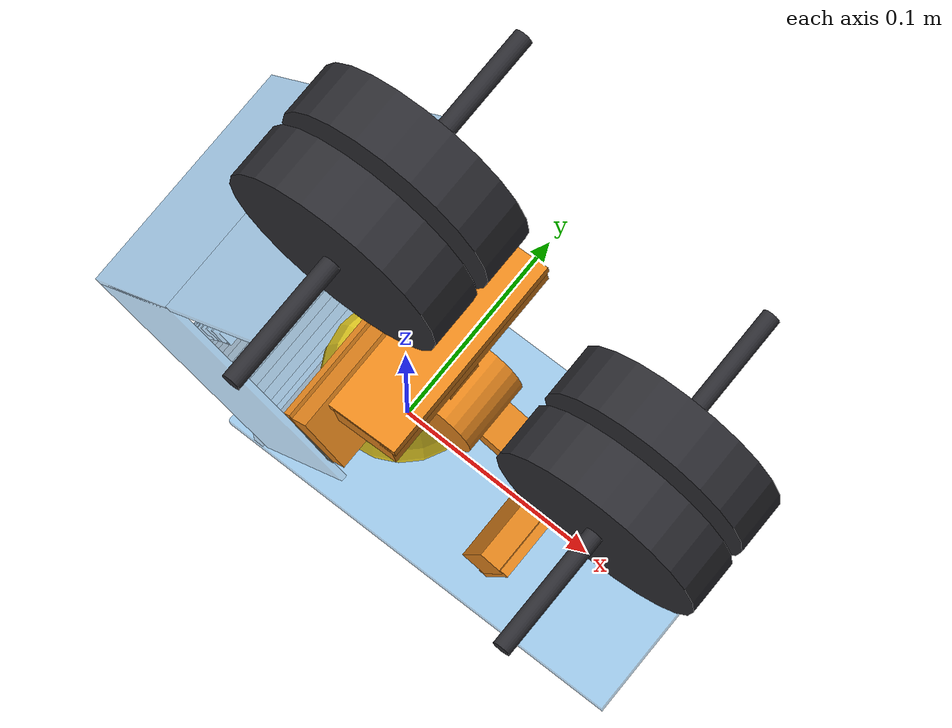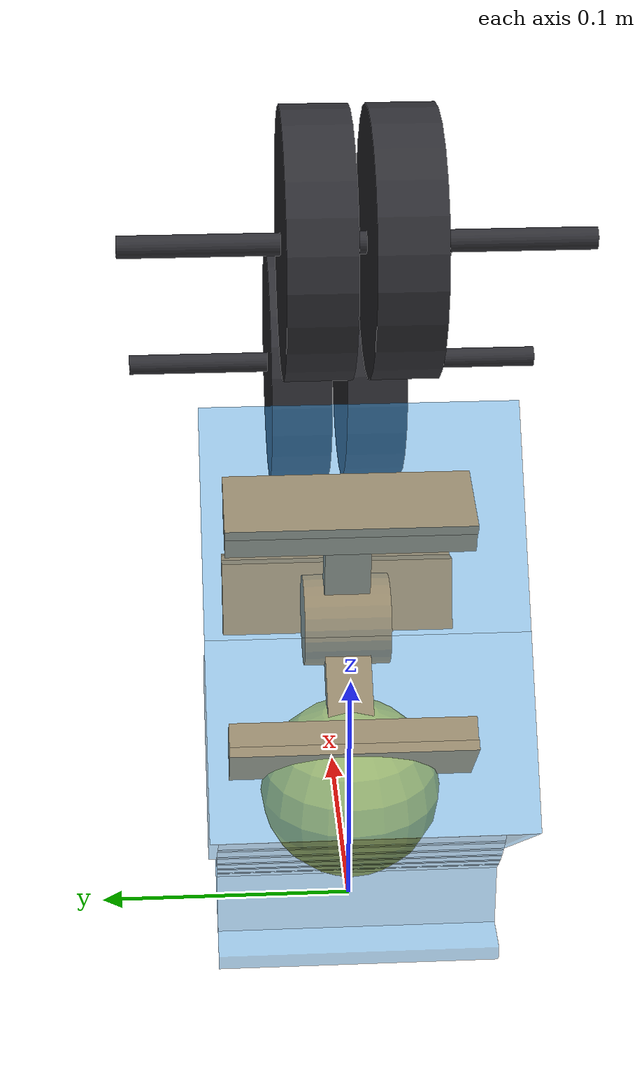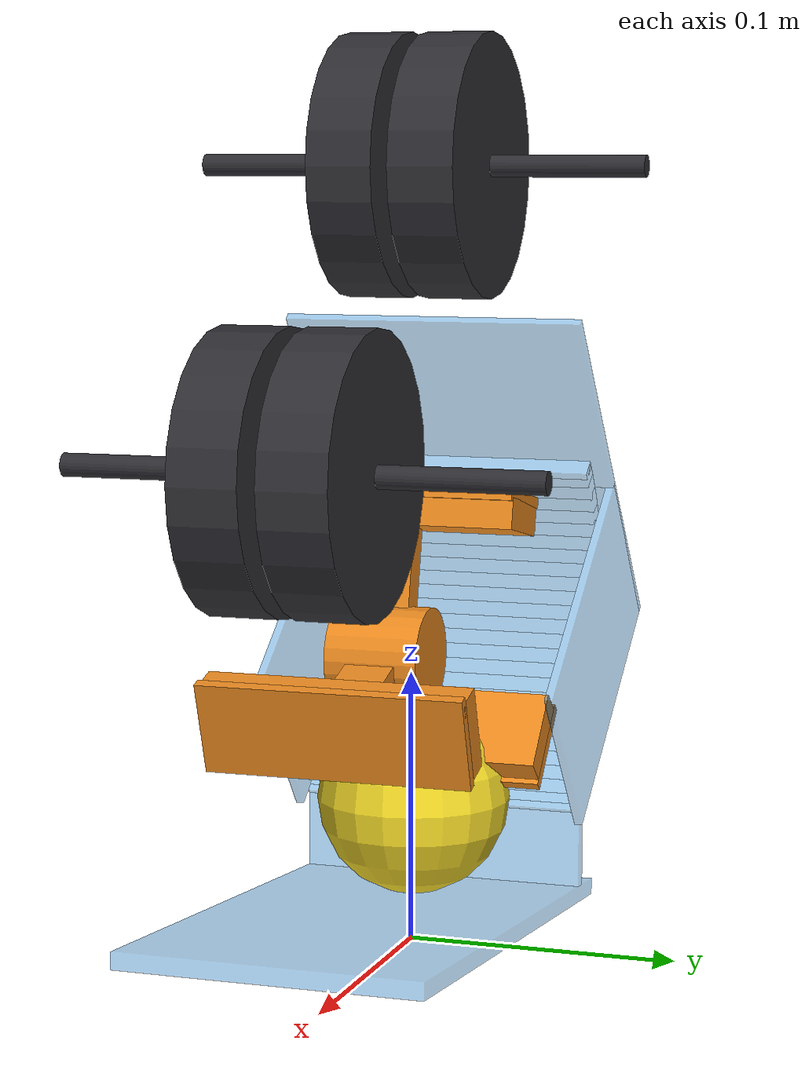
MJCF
<mujoco model="t06_pollen_launcher_v2">
  <compiler angle="radian" autolimits="true"/>
  <option timestep="0.0002" gravity="0 0 -9.81" integrator="implicitfast" cone="elliptic"/>
  <default>
    <geom friction="0.5 0.01 0.0001" solref="0.008 1" solimp="0.95 0.99 0.001"/>
    <default class="guide"><geom friction="0.25 0.005 0.0001" rgba="0.2 0.56 0.84 0.45"/></default>
    <default class="shell"><geom friction="0.25 0.005 0.0001" rgba="0.2 0.56 0.84 0.45"/></default>
    <default class="flywheel"><geom friction="1.6 0.02 0.0001" solref="0.006 1" rgba="0.18 0.18 0.20 1"/></default>
    <default class="paddle"><geom friction="0.7 0.01 0.0001" solref="0.006 1" rgba="0.92 0.54 0.12 1"/></default>
    <default class="ball"><geom friction="1.0 0.02 0.0001" solref="0.010 1" solimp="0.9 0.95 0.002" rgba="0.95 0.85 0.15 1" priority="1"/></default>
  </default>
  <worldbody>
    <light pos="0.2 -0.6 1.0" dir="-0.2 0.6 -1" diffuse="0.8 0.8 0.8"/>
    <geom name="guide_roof_3" class="guide" type="box" size="0.035000 0.057000 0.001500" pos="-0.095699 0.000000 0.135414" quat="0.898794 0.000000 -0.438371 0.000000"/>
    <geom name="guide_wall_3_-1" class="guide" type="box" size="0.035000 0.001500 0.055000" pos="-0.052359 -0.055500 0.101552" quat="0.898794 0.000000 -0.438371 0.000000"/>
    <geom name="guide_wall_3_+1" class="guide" type="box" size="0.035000 0.001500 0.055000" pos="-0.052359 0.055500 0.101552" quat="0.898794 0.000000 -0.438371 0.000000"/>
    <geom name="shooter_throat_+55" class="guide" type="box" size="0.041500 0.057000 0.001500" pos="-0.048601 0.000000 0.195696" quat="0.898794 0.000000 -0.438371 0.000000"/>
    <geom name="shell_00" class="shell" type="box" size="0.003971 0.054000 0.003500" pos="-0.049085 0.000000 0.169118" quat="-0.451883 0.000000 -0.892077 0.000000"/>
    <geom name="shell_01" class="shell" type="box" size="0.003971 0.054000 0.003500" pos="-0.052420 0.000000 0.164273" quat="-0.478596 0.000000 -0.878035 0.000000"/>
    <geom name="shell_02" class="shell" type="box" size="0.003971 0.054000 0.003500" pos="-0.055457 0.000000 0.159236" quat="-0.504873 0.000000 -0.863194 0.000000"/>
    <geom name="shell_03" class="shell" type="box" size="0.003971 0.054000 0.003500" pos="-0.058184 0.000000 0.154024" quat="-0.530690 0.000000 -0.847566 0.000000"/>
    <geom name="shell_04" class="shell" type="box" size="0.003971 0.054000 0.003500" pos="-0.060592 0.000000 0.148658" quat="-0.556024 0.000000 -0.831166 0.000000"/>
    <geom name="shell_05" class="shell" type="box" size="0.003971 0.054000 0.003500" pos="-0.062672 0.000000 0.143156" quat="-0.580851 0.000000 -0.814010 0.000000"/>
    <geom name="shell_06" class="shell" type="box" size="0.003971 0.054000 0.003500" pos="-0.064416 0.000000 0.137539" quat="-0.605149 0.000000 -0.796112 0.000000"/>
    <geom name="shell_07" class="shell" type="box" size="0.003971 0.054000 0.003500" pos="-0.065818 0.000000 0.131827" quat="-0.628896 0.000000 -0.777489 0.000000"/>
    <geom name="shell_08" class="shell" type="box" size="0.003971 0.054000 0.003500" pos="-0.066873 0.000000 0.126041" quat="-0.652071 0.000000 -0.758158 0.000000"/>
    <geom name="shell_09" class="shell" type="box" size="0.003971 0.054000 0.003500" pos="-0.067577 0.000000 0.120201" quat="-0.674651 0.000000 -0.738137 0.000000"/>
    <geom name="shell_10" class="shell" type="box" size="0.003971 0.054000 0.003500" pos="-0.067928 0.000000 0.114330" quat="-0.696617 0.000000 -0.717443 0.000000"/>
    <geom name="shell_11" class="shell" type="box" size="0.003971 0.054000 0.003500" pos="-0.067923 0.000000 0.108448" quat="-0.717949 0.000000 -0.696096 0.000000"/>
    <geom name="shell_12" class="shell" type="box" size="0.003971 0.054000 0.003500" pos="-0.067564 0.000000 0.102578" quat="-0.738627 0.000000 -0.674114 0.000000"/>
    <geom name="shell_13" class="shell" type="box" size="0.003971 0.054000 0.003500" pos="-0.066852 0.000000 0.096739" quat="-0.758632 0.000000 -0.651519 0.000000"/>
    <geom name="shell_14" class="shell" type="box" size="0.003971 0.054000 0.003500" pos="-0.065788 0.000000 0.090954" quat="-0.777946 0.000000 -0.628331 0.000000"/>
    <geom name="shell_15" class="shell" type="box" size="0.003971 0.054000 0.003500" pos="-0.064378 0.000000 0.085244" quat="-0.796552 0.000000 -0.604570 0.000000"/>
    <geom name="shell_16" class="shell" type="box" size="0.003971 0.054000 0.003500" pos="-0.062626 0.000000 0.079630" quat="-0.814432 0.000000 -0.580259 0.000000"/>
    <geom name="shell_17" class="shell" type="box" size="0.003971 0.054000 0.003500" pos="-0.060538 0.000000 0.074131" quat="-0.831571 0.000000 -0.555419 0.000000"/>
    <geom name="shell_18" class="shell" type="box" size="0.003971 0.054000 0.003500" pos="-0.058122 0.000000 0.068768" quat="-0.847952 0.000000 -0.530073 0.000000"/>
    <geom name="shell_19" class="shell" type="box" size="0.003971 0.054000 0.003500" pos="-0.055387 0.000000 0.063561" quat="-0.863561 0.000000 -0.504245 0.000000"/>
    <geom name="shell_20" class="shell" type="box" size="0.003971 0.054000 0.003500" pos="-0.052343 0.000000 0.058528" quat="-0.878383 0.000000 -0.477957 0.000000"/>
    <geom name="shell_21" class="shell" type="box" size="0.003971 0.054000 0.003500" pos="-0.049001 0.000000 0.053688" quat="-0.892405 0.000000 -0.451235 0.000000"/>
    <geom name="shell_22" class="shell" type="box" size="0.003971 0.054000 0.003500" pos="-0.045373 0.000000 0.049059" quat="-0.905615 0.000000 -0.424101 0.000000"/>
    <geom name="shell_23" class="shell" type="box" size="0.003971 0.054000 0.003500" pos="-0.041473 0.000000 0.044656" quat="-0.918000 0.000000 -0.396581 0.000000"/>
    <geom name="shell_lip_face" class="shell" type="box" size="0.003500 0.054000 0.001500" pos="-0.039425 0.000000 0.042545" quat="-0.382683 0.000000 -0.923880 0.000000"/>
    <geom name="shell_exit_face" class="shell" type="box" size="0.003500 0.054000 0.001500" pos="-0.047310 0.000000 0.171462" quat="0.325568 0.000000 -0.945519 0.000000"/>
    <geom name="tray" class="shell" type="box" size="0.103393 0.054000 0.003000" pos="0.046739 0.000000 0.018825" quat="0.999048 0.000000 -0.043619 0.000000"/>
    <geom name="strut" class="shell" type="box" size="0.002475 0.054000 0.015500" pos="-0.039425 0.000000 0.029500" quat="1.000000 0.000000 0.000000 0.000000"/>
  <body name="flywheel_upper" pos="-0.010737 0.000000 0.284767">
    <joint name="fw_upper" type="hinge" axis="0 1 0" damping="0.0002"/>
    <geom name="fw_shaft_upper" class="flywheel" type="cylinder" size="0.004000 0.084000" quat="0.707107 -0.707107 0 0" mass="0.05"/>
    <geom name="fw_upper_1" class="flywheel" type="cylinder" size="0.048000 0.012000" pos="0 -0.015000 0" quat="0.707107 -0.707107 0 0" mass="0.105"/>
    <geom name="fw_upper_2" class="flywheel" type="cylinder" size="0.048000 0.012000" pos="0 0.015000 0" quat="0.707107 -0.707107 0 0" mass="0.105"/>
  </body>
  <body name="flywheel_lower" pos="0.115345 0.000000 0.186261">
    <joint name="fw_lower" type="hinge" axis="0 1 0" damping="0.0002"/>
    <geom name="fw_shaft_lower" class="flywheel" type="cylinder" size="0.004000 0.084000" quat="0.707107 -0.707107 0 0" mass="0.05"/>
    <geom name="fw_lower_1" class="flywheel" type="cylinder" size="0.048000 0.012000" pos="0 -0.015000 0" quat="0.707107 -0.707107 0 0" mass="0.105"/>
    <geom name="fw_lower_2" class="flywheel" type="cylinder" size="0.048000 0.012000" pos="0 0.015000 0" quat="0.707107 -0.707107 0 0" mass="0.105"/>
  </body>
  <body name="paddle" pos="0.029490 0.000000 0.111460">
    <joint name="paddle_joint" type="hinge" axis="0 1 0" damping="0.0005"/>
    <geom name="paddle_hub" class="paddle" type="cylinder" size="0.018000 0.017000" quat="0.707107 -0.707107 0 0" mass="0.05"/>
    <geom name="paddle_arm_1" class="paddle" type="box" size="0.016000 0.009000 0.005000" pos="0.028532 0.000000 -0.009271" quat="0.987688 0.000000 0.156434 0.000000" mass="0.01"/>
    <geom name="paddle_blade_1" class="paddle" type="box" size="0.006000 0.048000 0.015000" pos="0.049455 0.000000 -0.016069" quat="0.987688 0.000000 0.156434 0.000000" mass="0.02"/>
    <geom name="paddle_flex_1" class="paddle" type="box" size="0.002000 0.048000 0.017000" pos="0.055161 0.000000 -0.017923" quat="0.987688 0.000000 0.156434 0.000000" mass="0.008"/>
    <geom name="paddle_arm_2" class="paddle" type="box" size="0.016000 0.009000 0.005000" pos="-0.022294 0.000000 -0.020074" quat="0.358368 0.000000 0.933580 0.000000" mass="0.01"/>
    <geom name="paddle_blade_2" class="paddle" type="box" size="0.006000 0.048000 0.015000" pos="-0.038644 0.000000 -0.034795" quat="0.358368 0.000000 0.933580 0.000000" mass="0.02"/>
    <geom name="paddle_flex_2" class="paddle" type="box" size="0.002000 0.048000 0.017000" pos="-0.043102 0.000000 -0.038810" quat="0.358368 0.000000 0.933580 0.000000" mass="0.008"/>
    <geom name="paddle_arm_3" class="paddle" type="box" size="0.016000 0.009000 0.005000" pos="-0.006237 0.000000 0.029344" quat="-0.629320 0.000000 0.777146 0.000000" mass="0.01"/>
    <geom name="paddle_blade_3" class="paddle" type="box" size="0.006000 0.048000 0.015000" pos="-0.010811 0.000000 0.050864" quat="-0.629320 0.000000 0.777146 0.000000" mass="0.02"/>
    <geom name="paddle_flex_3" class="paddle" type="box" size="0.002000 0.048000 0.017000" pos="-0.012059 0.000000 0.056733" quat="-0.629320 0.000000 0.777146 0.000000" mass="0.008"/>
  </body>
  <body name="ball" pos="-0.002300 0 0.053060">
    <freejoint name="ball_free"/>
    <geom name="ball_geom" class="ball" type="sphere" size="0.035560" mass="0.06"/>
  </body>
  </worldbody>
  <actuator>
    <velocity name="fw_upper_vel" joint="fw_upper" kv="0.5" ctrlrange="-400 400" forcerange="-3.0 3.0"/>
    <velocity name="fw_lower_vel" joint="fw_lower" kv="0.5" ctrlrange="-400 400" forcerange="-3.0 3.0"/>
    <velocity name="paddle_vel" joint="paddle_joint" kv="0.08" ctrlrange="-100 100" forcerange="-1.5 1.5"/>
  </actuator>
</mujoco>
